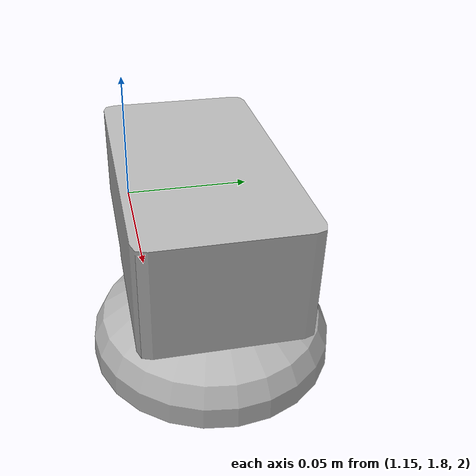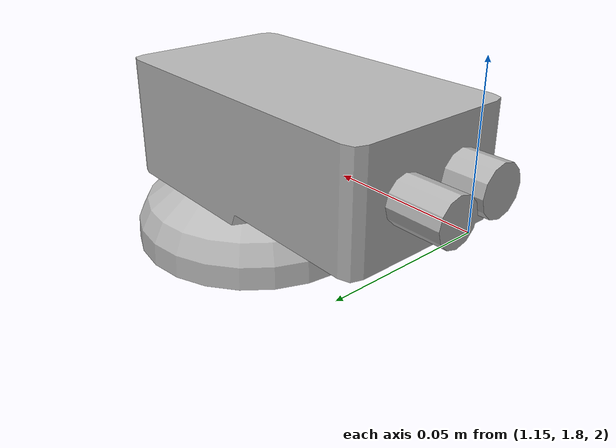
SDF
<?xml version="1.0" ?>
<sdf version="1.6">
  <world name="omtp_world">
    <!-- Set the initial camera pose to be looking at the workspace. -->
    <gui>
      <camera name="user_camera">
        <pose>-4.20 2.00 6.10 0 0.9 -0.27</pose>
      </camera>
    </gui>

    <physics type="ode">
      <real_time_factor>10</real_time_factor> <!-- 'max_step_size' * 'real_time_update_rate' sets an upper bound of real_time_factor -->
      <max_step_size>0.001</max_step_size> <!-- The maximum time step size that can be taken by a variable time-step solver, default: 0.001 -->
      <real_time_update_rate>2000</real_time_update_rate> <!-- The frequency at which the simulation time steps are advanced, default: 1000 Hz -->
    </physics>

    <!-- Disable shadows. -->
    <scene>
      <shadows>false</shadows>
    </scene>

    <!-- A global light source -->
    <include>
      <uri>model://sun</uri>
    </include>

    <!-- A directed light source -->
    <light name="camera_spot_light" type='spot'>
      <pose>-10 10 10 0 -1 -0.8</pose>
      <diffuse>0.5 0.5 0.5 1</diffuse>
      <specular>0.1 0.1 0.1 1</specular>
      <direction>0 0 -1</direction>
      <attenuation>
        <range>20</range>
        <constant>0.5</constant>
        <linear>0.01</linear>
        <quadratic>0.001</quadratic>
      </attenuation>
      <cast_shadows>0</cast_shadows>
      <spot>
        <inner_angle>0.6</inner_angle>
        <outer_angle>1</outer_angle>
        <falloff>1</falloff>
      </spot>
    </light>

    <include>
      <uri>model://conveyor</uri>
      <pose>1.2 5 0 0 0 -1.571</pose>
    </include>

    <include>
      <uri>model://deletion_wall</uri>
      <pose>1.2 -5.1 1.425 0 0 1.5708</pose>
    </include>

    <!-- include logical camera model(s) here -->

    <include>
      <uri>model://logical_camera</uri>
      <pose> 1.2  1.8  2.0 0 1.5708 0</pose>
    </include>

  </world>
</sdf>

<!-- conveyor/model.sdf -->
<sdf version="1.6">
  <model name="conveyor_belt">

    <model name="conveyor_belt_fixed">
      <static>true</static>
      <pose>0 0 0 0 0 0</pose>
      <link name="link">
        <pose>0 0 0 0 0 0</pose>
      </link>
    </model>

    <model name="conveyor_belt_moving">
      <static>false</static>
      <pose>0 0 0.92 0 0 0</pose>
      <link name="belt">
        <pose>5 0 -0.003 0 0 0</pose>
        <inertial>
          <inertia>
            <ixx>3.8185</ixx>
            <ixy>0</ixy>
            <ixz>0</ixz>
            <iyy>1781.5</iyy>
            <iyz>0</iyz>
            <izz>1784.72</izz>
          </inertia>
          <mass>100</mass>
        </inertial>
        <collision name="belt_collision">
          <geometry>
            <box>
              <size>10 0.6 0.006</size>
            </box>
          </geometry>
          <surface>
            <friction>
              <ode>
                <mu>1.0</mu>
                <mu2>1.0</mu2>
              </ode>
              <torsional>
                <coefficient>1000.0</coefficient>
                <patch_radius>0.1</patch_radius>
              </torsional>
            </friction>
          </surface>
        </collision>
      </link>
    </model>

    <joint name="belt_joint" type="prismatic">
      <parent>conveyor_belt_fixed::link</parent>
      <child>conveyor_belt_moving::belt</child>
      <axis>
        <xyz>1 0 0</xyz>
        <limit>
          <lower>0</lower>
          <upper>1.0</upper>
        </limit>
      </axis>
    </joint>

    <plugin name="conveyor_belt_plugin" filename="libROSConveyorBeltPlugin.so">
      <robot_namespace>/omtp</robot_namespace>
      <population_rate_modifier_topic>/omtp/population/rate_modifier</population_rate_modifier_topic>
      <link>conveyor_belt::conveyor_belt_moving::belt</link>
      <power>0</power>
    </plugin>

  </model>
</sdf>

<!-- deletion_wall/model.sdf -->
<sdf version="1.6">
  <model name="deletion_wall">

    <static>true</static>
    <link name="sensing_link">
      <gravity>false</gravity>
      <sensor name="object_disposal_contact" type="contact">
        <update_rate>10</update_rate>
        <contact>
           <collision>collision</collision>
        </contact>
      </sensor>
      <collision name="collision">
        <max_contacts>10</max_contacts>
        <geometry>
          <box>
            <size>0.1 1 1</size>
          </box>
        </geometry>
      </collision>
      <visual name="visual">
        <geometry>
          <box>
            <size>0.1 1 1</size>
          </box>
        </geometry>
        <cast_shadows>0</cast_shadows>

        <transparency>100</transparency>
      </visual>
    </link>

    <plugin name="object_disposal_plugin" filename="libObjectDisposalPlugin.so">
      <contact_sensor_name>object_disposal_contact</contact_sensor_name>
      <contact_side_normal>1 0 0</contact_side_normal>
      <disposal_pose>30 30 0 0 0 0</disposal_pose>
      <update_rate>5</update_rate>
    </plugin>

  </model>
</sdf>

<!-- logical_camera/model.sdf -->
<sdf version="1.6">
  <model name="logical_camera">
    <plugin name="ros_logical_camera" filename="libROSLogicalCameraPlugin.so">
      <robotNamespace>omtp</robotNamespace>
    </plugin>
    <link name="logical_camera_link">
      <gravity>false</gravity>
      <inertial>
        <mass>0.1</mass>
        <inertia>
          <ixx>0.000166667</ixx>
          <iyy>0.000166667</iyy>
          <izz>0.000166667</izz>
        </inertia>
      </inertial>

      <collision name="collision">
        <pose>0 0.02 0 0 0 -1.5708</pose>
        <geometry>
          <mesh>
            <uri>model://logical_camera/meshes/camera.dae</uri>
          </mesh>
        </geometry>
      </collision>

      <visual name="visual">
        <pose>0 0.02 0 0 0 -1.5708</pose>
        <geometry>
          <mesh>
            <uri>model://logical_camera/meshes/camera.dae</uri>
          </mesh>
        </geometry>
      </visual>

      <sensor name="logical_camera" type="logical_camera">

        <logical_camera>
          <near>0.2</near>
          <far>1.0</far>
          <horizontal_fov>1.1</horizontal_fov>
          <aspect_ratio>1.5</aspect_ratio>
        </logical_camera>

        <visualize>true</visualize>
        <always_on>true</always_on>
        <update_rate>10</update_rate>
      </sensor>
    </link>
  </model>
</sdf>
